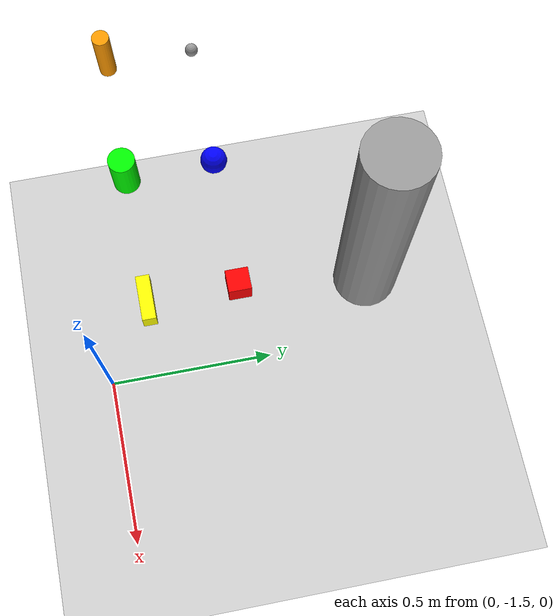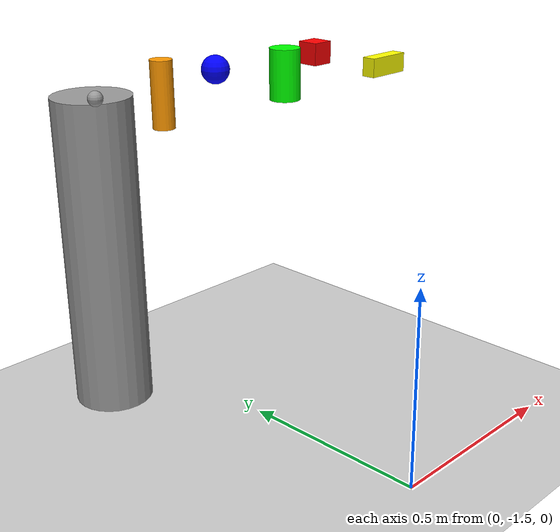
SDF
<sdf version="1.6">
 <world name="default">
  <light name="sun" type="directional">
   <pose>0 0 10 0 -0 0</pose>
   <diffuse>0.8 0.8 0.8 1</diffuse>
   <specular>0.2 0.2 0.2 1</specular>
   <attenuation>
    <range>1000</range>
    <constant>0.9</constant>
    <linear>0.01</linear>
    <quadratic>0.001</quadratic>
   </attenuation>
   <direction>-0.5 0.1 -0.9</direction>
  </light>
  <model name="ground_plane">
   <static>1</static>
   <link name="link">
    <collision name="collision">
     <geometry><plane><normal>0 0 1</normal><size>100 100</size></plane></geometry>
     <surface>
      <contact><collide_bitmask>65535</collide_bitmask></contact>
      <friction><ode><mu>100</mu><mu2>50</mu2></ode></friction>
     </surface>
    </collision>
    <visual name="visual">
     <cast_shadows>0</cast_shadows>
     <geometry><plane><normal>0 0 1</normal><size>100 100</size></plane></geometry>
     <material>
      <script><uri>file://media/materials/scripts/gazebo.material</uri><name>Gazebo/Grey</name></script>
     </material>
    </visual>
   </link>
  </model>
  <gravity>0 0 -9.8</gravity>
  <magnetic_field>6e-06 2.3e-05 -4.2e-05</magnetic_field>
  <atmosphere type="adiabatic"/>
  <physics name="default_physics" default="0" type="ode">
   <max_step_size>0.001</max_step_size>
   <real_time_factor>1</real_time_factor>
   <real_time_update_rate>1000</real_time_update_rate>
  </physics>
  <scene><ambient>0.4 0.4 0.4 1</ambient><background>0.7 0.7 0.7 1</background><shadows>1</shadows></scene>
  <spherical_coordinates>
   <surface_model>EARTH_WGS84</surface_model>
   <latitude_deg>0</latitude_deg>
   <longitude_deg>0</longitude_deg>
   <elevation>0</elevation>
   <heading_deg>0</heading_deg>
  </spherical_coordinates>
  <model name="yellow_box">
   <link name="link">
    <inertial>
     <mass>1</mass>
     <inertia>
      <ixx>0.166667</ixx>
      <ixy>0</ixy>
      <ixz>0</ixz>
      <iyy>0.166667</iyy>
      <iyz>0</iyz>
      <izz>0.166667</izz>
     </inertia>
    </inertial>
    <pose>0 -0 0.02 0 -0 0</pose>
    <visual name="visual">
     <geometry><box><size>0.1 0.03 0.04</size></box></geometry>
     <material>
      <script><name>Gazebo/Grey</name><uri>file://media/materials/scripts/gazebo.material</uri></script>
      <shader type="pixel"><normal_map>__default__</normal_map></shader>
      <ambient>1 1 0 1</ambient>
      <diffuse>0.7 0.7 0.7 1</diffuse>
      <specular>0.01 0.01 0.01 1</specular>
      <emissive>0 0 0 1</emissive>
     </material>
    </visual>
    <collision name="collision">
     <geometry><box><size>0.1 0.03 0.04</size></box></geometry>
     <surface>
      <friction>
       <ode><mu>1</mu><mu2>1</mu2><fdir1>0 0 0</fdir1><slip1>0</slip1><slip2>0</slip2></ode>
       <torsional>
        <coefficient>1</coefficient>
        <patch_radius>0</patch_radius>
        <surface_radius>0</surface_radius>
        <use_patch_radius>1</use_patch_radius>
        <ode><slip>0</slip></ode>
       </torsional>
      </friction>
      <bounce><restitution_coefficient>0</restitution_coefficient><threshold>1e+06</threshold></bounce>
      <contact>
       <collide_without_contact>0</collide_without_contact>
       <collide_without_contact_bitmask>1</collide_without_contact_bitmask>
       <collide_bitmask>1</collide_bitmask>
       <ode>
        <soft_cfm>0</soft_cfm>
        <soft_erp>0.2</soft_erp>
        <kp>1e+13</kp>
        <kd>1</kd>
        <max_vel>0.01</max_vel>
        <min_depth>0</min_depth>
       </ode>
       <bullet>
        <split_impulse>1</split_impulse>
        <split_impulse_penetration_threshold>-0.01</split_impulse_penetration_threshold>
        <soft_cfm>0</soft_cfm>
        <soft_erp>0.2</soft_erp>
        <kp>1e+13</kp>
        <kd>1</kd>
       </bullet>
      </contact>
     </surface>
    </collision>
   </link>
   <static>0</static>
   <pose>0.1 -1.3 0.91 0 -0 0</pose>
  </model>
  <model name="red_box">
   <link name="link">
    <inertial>
     <mass>1</mass>
     <inertia>
      <ixx>0.166667</ixx>
      <ixy>0</ixy>
      <ixz>0</ixz>
      <iyy>0.166667</iyy>
      <iyz>0</iyz>
      <izz>0.166667</izz>
     </inertia>
    </inertial>
    <pose>0 -0 0.025 0 -0 0</pose>
    <visual name="visual">
     <geometry><box><size>0.05 0.05 0.05</size></box></geometry>
     <material>
      <script><name>Gazebo/Grey</name><uri>file://media/materials/scripts/gazebo.material</uri></script>
      <shader type="pixel"><normal_map>__default__</normal_map></shader>
      <ambient>1 0 0 1</ambient>
      <diffuse>0.7 0.7 0.7 1</diffuse>
      <specular>0.01 0.01 0.01 1</specular>
      <emissive>0 0 0 1</emissive>
     </material>
    </visual>
    <collision name="collision">
     <geometry><box><size>0.05 0.05 0.05</size></box></geometry>
     <surface>
      <friction>
       <ode><mu>1</mu><mu2>1</mu2><fdir1>0 0 0</fdir1><slip1>0</slip1><slip2>0</slip2></ode>
       <torsional>
        <coefficient>1</coefficient>
        <patch_radius>0</patch_radius>
        <surface_radius>0</surface_radius>
        <use_patch_radius>1</use_patch_radius>
        <ode><slip>0</slip></ode>
       </torsional>
      </friction>
      <bounce><restitution_coefficient>0</restitution_coefficient><threshold>1e+06</threshold></bounce>
      <contact>
       <collide_without_contact>0</collide_without_contact>
       <collide_without_contact_bitmask>1</collide_without_contact_bitmask>
       <collide_bitmask>1</collide_bitmask>
       <ode>
        <soft_cfm>0</soft_cfm>
        <soft_erp>0.2</soft_erp>
        <kp>1e+13</kp>
        <kd>1</kd>
        <max_vel>0.01</max_vel>
        <min_depth>0</min_depth>
       </ode>
       <bullet>
        <split_impulse>1</split_impulse>
        <split_impulse_penetration_threshold>-0.01</split_impulse_penetration_threshold>
        <soft_cfm>0</soft_cfm>
        <soft_erp>0.2</soft_erp>
        <kp>1e+13</kp>
        <kd>1</kd>
       </bullet>
      </contact>
     </surface>
    </collision>
   </link>
   <static>0</static>
   <pose>0.1 -1.1 0.905 2e-06 -1.6e-05 3e-06</pose>
  </model>
  <model name="blue_ball">
   <link name="link_3">
    <inertial>
     <mass>0.0001131</mass>
     <inertia><ixx>4e-08</ixx><ixy>0</ixy><ixz>0</ixz><iyy>4e-08</iyy><iyz>0</iyz><izz>4e-08</izz></inertia>
    </inertial>
    <pose>0 0 0.03 0 -0 0</pose>
    <visual name="visual">
     <geometry><sphere><radius>0.03</radius></sphere></geometry>
     <material>
      <lighting>1</lighting>
      <script><uri>file://media/materials/scripts/gazebo.material</uri><name>Gazebo/Grey</name></script>
      <shader type="pixel"><normal_map>__default__</normal_map></shader>
      <ambient>0 0 1 0</ambient>
      <diffuse>0.7 0.7 0.7 1</diffuse>
      <specular>0.01 0.01 0.01 1</specular>
      <emissive>0 0 0 1</emissive>
     </material>
    </visual>
    <collision name="collision">
     <geometry><sphere><radius>0.03</radius></sphere></geometry>
     <surface>
      <friction>
       <ode><mu>1</mu><mu2>1</mu2><fdir1>0 0 0</fdir1><slip1>0</slip1><slip2>0</slip2></ode>
       <torsional>
        <coefficient>1</coefficient>
        <patch_radius>0</patch_radius>
        <surface_radius>0</surface_radius>
        <use_patch_radius>1</use_patch_radius>
        <ode><slip>0</slip></ode>
       </torsional>
      </friction>
      <bounce><restitution_coefficient>0</restitution_coefficient><threshold>1e+06</threshold></bounce>
      <contact>
       <collide_without_contact>0</collide_without_contact>
       <collide_without_contact_bitmask>1</collide_without_contact_bitmask>
       <collide_bitmask>1</collide_bitmask>
       <ode>
        <soft_cfm>0</soft_cfm>
        <soft_erp>0.2</soft_erp>
        <kp>1e+13</kp>
        <kd>1</kd>
        <max_vel>0.01</max_vel>
        <min_depth>0</min_depth>
       </ode>
       <bullet>
        <split_impulse>1</split_impulse>
        <split_impulse_penetration_threshold>-0.01</split_impulse_penetration_threshold>
        <soft_cfm>0</soft_cfm>
        <soft_erp>0.2</soft_erp>
        <kp>1e+13</kp>
        <kd>1</kd>
       </bullet>
      </contact>
     </surface>
    </collision>
   </link>
   <static>0</static>
   <pose>-0.2 -1.1 0.905 0 -0 0</pose>
  </model>
  <model name="grey_ball">
   <link name="link_3">
    <inertial>
     <mass>0.0001131</mass>
     <inertia><ixx>4e-08</ixx><ixy>0</ixy><ixz>0</ixz><iyy>4e-08</iyy><iyz>0</iyz><izz>4e-08</izz></inertia>
    </inertial>
    <pose>0 0 0.015 0 -0 0</pose>
    <visual name="visual">
     <geometry><sphere><radius>0.015</radius></sphere></geometry>
     <material>
      <lighting>1</lighting>
      <script><uri>file://media/materials/scripts/gazebo.material</uri><name>Gazebo/Grey</name></script>
      <shader type="pixel"><normal_map>__default__</normal_map></shader>
      <ambient>0.7 0.7 0.7 0</ambient>
      <diffuse>0.7 0.7 0.7 1</diffuse>
      <specular>0.01 0.01 0.01 1</specular>
      <emissive>0 0 0 1</emissive>
     </material>
    </visual>
    <collision name="collision">
     <geometry><sphere><radius>0.015</radius></sphere></geometry>
     <surface>
      <friction>
       <ode><mu>1</mu><mu2>1</mu2><fdir1>0 0 0</fdir1><slip1>0</slip1><slip2>0</slip2></ode>
       <torsional>
        <coefficient>1</coefficient>
        <patch_radius>0</patch_radius>
        <surface_radius>0</surface_radius>
        <use_patch_radius>1</use_patch_radius>
        <ode><slip>0</slip></ode>
       </torsional>
      </friction>
      <bounce><restitution_coefficient>0</restitution_coefficient><threshold>1e+06</threshold></bounce>
      <contact>
       <collide_without_contact>0</collide_without_contact>
       <collide_without_contact_bitmask>1</collide_without_contact_bitmask>
       <collide_bitmask>1</collide_bitmask>
       <ode>
        <soft_cfm>0</soft_cfm>
        <soft_erp>0.2</soft_erp>
        <kp>1e+13</kp>
        <kd>1</kd>
        <max_vel>0.01</max_vel>
        <min_depth>0</min_depth>
       </ode>
       <bullet>
        <split_impulse>1</split_impulse>
        <split_impulse_penetration_threshold>-0.01</split_impulse_penetration_threshold>
        <soft_cfm>0</soft_cfm>
        <soft_erp>0.2</soft_erp>
        <kp>1e+13</kp>
        <kd>1</kd>
       </bullet>
      </contact>
     </surface>
    </collision>
   </link>
   <static>0</static>
   <pose>-0.5 -1.1 0.91 0 -0 0</pose>
  </model>
  <model name="orange_cylinder">
   <link name="link_2">
    <inertial>
     <mass>0.00028274</mass>
     <inertia><ixx>3e-07</ixx><ixy>0</ixy><ixz>0</ixz><iyy>3e-07</iyy><iyz>0</iyz><izz>1.3e-07</izz></inertia>
    </inertial>
    <pose>-0 0 0.06 0 -0 0</pose>
    <visual name="visual">
     <geometry><cylinder><radius>0.02</radius><length>0.12</length></cylinder></geometry>
     <material>
      <lighting>1</lighting>
      <script><uri>file://media/materials/scripts/gazebo.material</uri><name>Gazebo/Grey</name></script>
      <shader type="pixel"><normal_map>__default__</normal_map></shader>
      <ambient>1 0.6 0 1</ambient>
      <diffuse>0.7 0.7 0.7 1</diffuse>
      <specular>0.01 0.01 0.01 1</specular>
      <emissive>0 0 0 1</emissive>
     </material>
    </visual>
    <collision name="collision">
     <geometry><cylinder><radius>0.02</radius><length>0.12</length></cylinder></geometry>
     <surface>
      <friction>
       <ode><mu>1</mu><mu2>1</mu2><fdir1>0 0 0</fdir1><slip1>0</slip1><slip2>0</slip2></ode>
       <torsional>
        <coefficient>1</coefficient>
        <patch_radius>0</patch_radius>
        <surface_radius>0</surface_radius>
        <use_patch_radius>1</use_patch_radius>
        <ode><slip>0</slip></ode>
       </torsional>
      </friction>
      <bounce><restitution_coefficient>0</restitution_coefficient><threshold>1e+06</threshold></bounce>
      <contact>
       <collide_without_contact>0</collide_without_contact>
       <collide_without_contact_bitmask>1</collide_without_contact_bitmask>
       <collide_bitmask>1</collide_bitmask>
       <ode>
        <soft_cfm>0</soft_cfm>
        <soft_erp>0.2</soft_erp>
        <kp>1e+13</kp>
        <kd>1</kd>
        <max_vel>0.01</max_vel>
        <min_depth>0</min_depth>
       </ode>
       <bullet>
        <split_impulse>1</split_impulse>
        <split_impulse_penetration_threshold>-0.01</split_impulse_penetration_threshold>
        <soft_cfm>0</soft_cfm>
        <soft_erp>0.2</soft_erp>
        <kp>1e+13</kp>
        <kd>1</kd>
       </bullet>
      </contact>
     </surface>
    </collision>
   </link>
   <static>0</static>
   <pose>-0.5 -1.3 0.904991 -0 -1e-06 0.0001</pose>
  </model>
  <model name="green_cylinder">
   <link name="link_2">
    <inertial>
     <mass>0.00028274</mass>
     <inertia><ixx>3e-07</ixx><ixy>0</ixy><ixz>0</ixz><iyy>3e-07</iyy><iyz>0</iyz><izz>1.3e-07</izz></inertia>
    </inertial>
    <pose>-0 0 0.05 0 -0 0</pose>
    <visual name="visual">
     <geometry><cylinder><radius>0.03</radius><length>0.1</length></cylinder></geometry>
     <material>
      <lighting>1</lighting>
      <script><uri>file://media/materials/scripts/gazebo.material</uri><name>Gazebo/Grey</name></script>
      <shader type="pixel"><normal_map>__default__</normal_map></shader>
      <ambient>0 1 0 1</ambient>
      <diffuse>0.7 0.7 0.7 1</diffuse>
      <specular>0.01 0.01 0.01 1</specular>
      <emissive>0 0 0 1</emissive>
     </material>
    </visual>
    <collision name="collision">
     <geometry><cylinder><radius>0.03</radius><length>0.1</length></cylinder></geometry>
     <surface>
      <friction>
       <ode><mu>1</mu><mu2>1</mu2><fdir1>0 0 0</fdir1><slip1>0</slip1><slip2>0</slip2></ode>
       <torsional>
        <coefficient>1</coefficient>
        <patch_radius>0</patch_radius>
        <surface_radius>0</surface_radius>
        <use_patch_radius>1</use_patch_radius>
        <ode><slip>0</slip></ode>
       </torsional>
      </friction>
      <bounce><restitution_coefficient>0</restitution_coefficient><threshold>1e+06</threshold></bounce>
      <contact>
       <collide_without_contact>0</collide_without_contact>
       <collide_without_contact_bitmask>1</collide_without_contact_bitmask>
       <collide_bitmask>1</collide_bitmask>
       <ode>
        <soft_cfm>0</soft_cfm>
        <soft_erp>0.2</soft_erp>
        <kp>1e+13</kp>
        <kd>1</kd>
        <max_vel>0.01</max_vel>
        <min_depth>0</min_depth>
       </ode>
       <bullet>
        <split_impulse>1</split_impulse>
        <split_impulse_penetration_threshold>-0.01</split_impulse_penetration_threshold>
        <soft_cfm>0</soft_cfm>
        <soft_erp>0.2</soft_erp>
        <kp>1e+13</kp>
        <kd>1</kd>
       </bullet>
      </contact>
     </surface>
    </collision>
   </link>
   <static>0</static>
   <pose>-0.20002 -1.3 0.905002 6e-05 -4e-06 0.000289</pose>
  </model>
  <model name="robotbase">
   <link name="link">
    <inertial>
     <mass>1</mass>
     <inertia><ixx>0.145833</ixx><ixy>0</ixy><ixz>0</ixz><iyy>0.145833</iyy><iyz>0</iyz><izz>0.125</izz></inertia>
    </inertial>
    <pose>0 0 0.405 0 -0 0</pose>
    <visual name="visual">
     <geometry><cylinder><radius>0.1</radius><length>0.81</length></cylinder></geometry>
     <material>
      <script><name>Gazebo/Grey</name><uri>file://media/materials/scripts/gazebo.material</uri></script>
      <shader type="pixel"><normal_map>__default__</normal_map></shader>
      <ambient>0.3 0.3 0.3 1</ambient>
      <diffuse>0.7 0.7 0.7 1</diffuse>
      <specular>0.01 0.01 0.01 1</specular>
      <emissive>0 0 0 1</emissive>
     </material>
    </visual>
    <collision name="collision">
     <geometry><cylinder><radius>0.1</radius><length>0.81</length></cylinder></geometry>
     <surface>
      <friction>
       <ode><mu>1</mu><mu2>1</mu2><fdir1>0 0 0</fdir1><slip1>0</slip1><slip2>0</slip2></ode>
       <torsional>
        <coefficient>1</coefficient>
        <patch_radius>0</patch_radius>
        <surface_radius>0</surface_radius>
        <use_patch_radius>1</use_patch_radius>
        <ode><slip>0</slip></ode>
       </torsional>
      </friction>
      <bounce><restitution_coefficient>0</restitution_coefficient><threshold>1e+06</threshold></bounce>
      <contact>
       <collide_without_contact>0</collide_without_contact>
       <collide_without_contact_bitmask>1</collide_without_contact_bitmask>
       <collide_bitmask>1</collide_bitmask>
       <ode>
        <soft_cfm>0</soft_cfm>
        <soft_erp>0.2</soft_erp>
        <kp>1e+13</kp>
        <kd>1</kd>
        <max_vel>0.01</max_vel>
        <min_depth>0</min_depth>
       </ode>
       <bullet>
        <split_impulse>1</split_impulse>
        <split_impulse_penetration_threshold>-0.01</split_impulse_penetration_threshold>
        <soft_cfm>0</soft_cfm>
        <soft_erp>0.2</soft_erp>
        <kp>1e+13</kp>
        <kd>1</kd>
       </bullet>
      </contact>
     </surface>
    </collision>
   </link>
   <static>0</static>
   <pose>-0.2 -0.65 0 0 0 0</pose>
  </model>
 </world>
</sdf>
